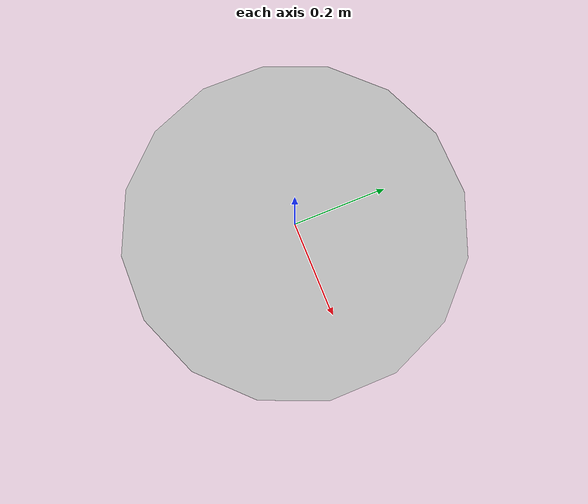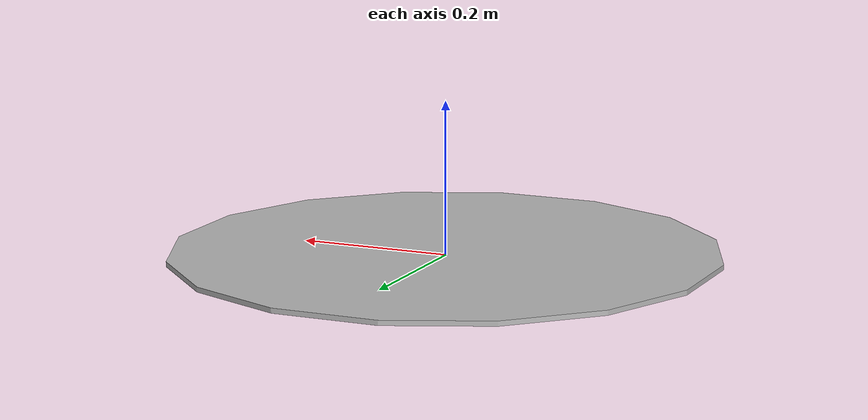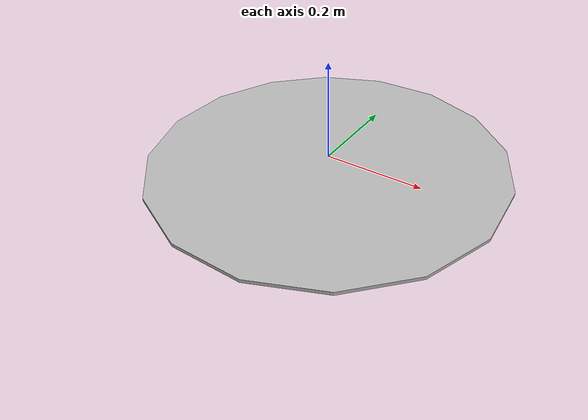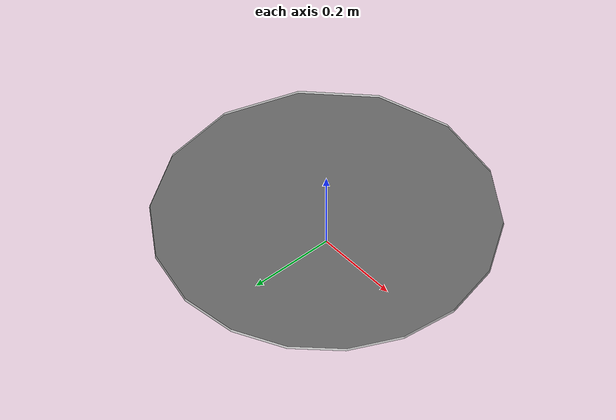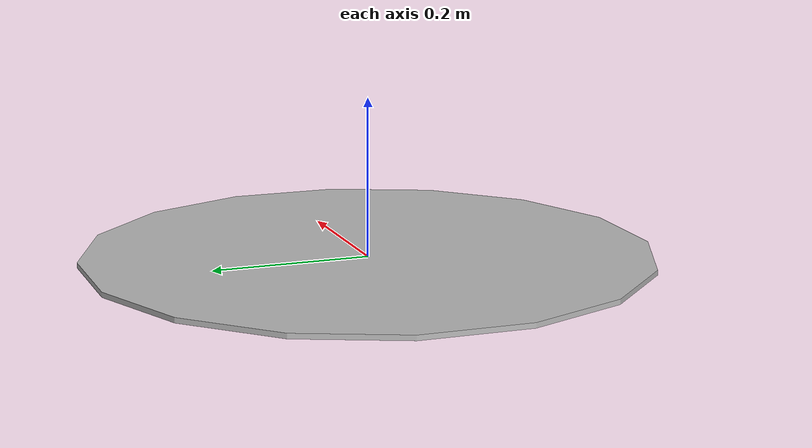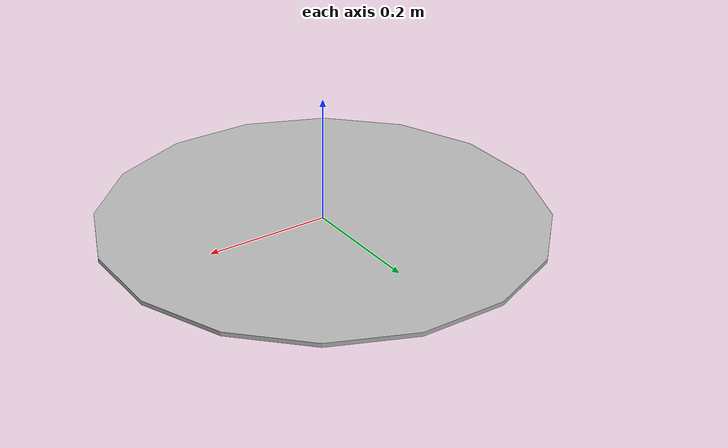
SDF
<?xml version="1.0" ?>
<sdf version="1.10">
  <model name="landing_pad">
    <static>true</static>
    <link name="link">
      <visual name="visual">
        <geometry>
          <mesh>
            <scale>1 1 1</scale>
            <uri>model://landing_pad/meshes/landing_pad.dae</uri>
          </mesh>
        </geometry>
      </visual>
    </link>
  </model>
</sdf>
